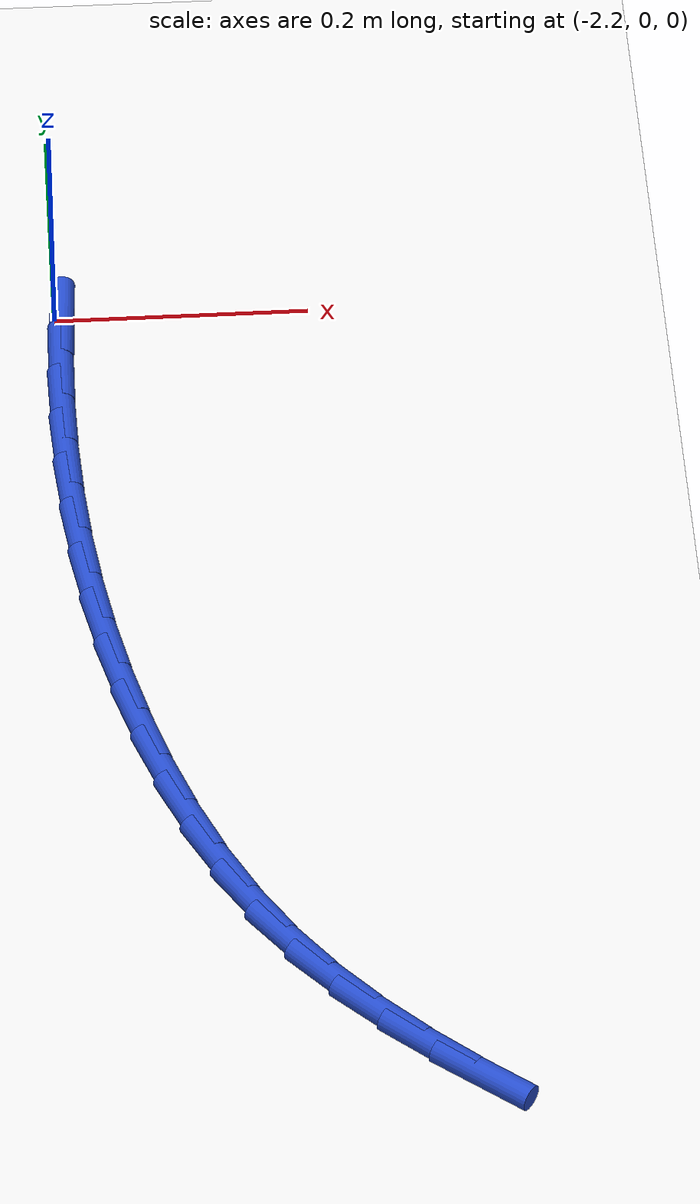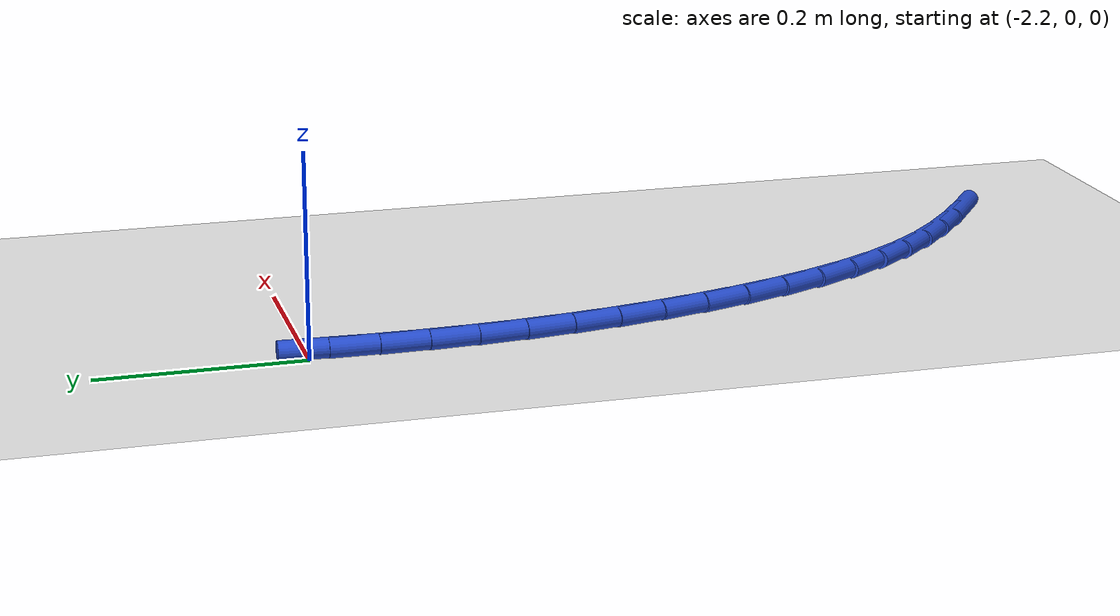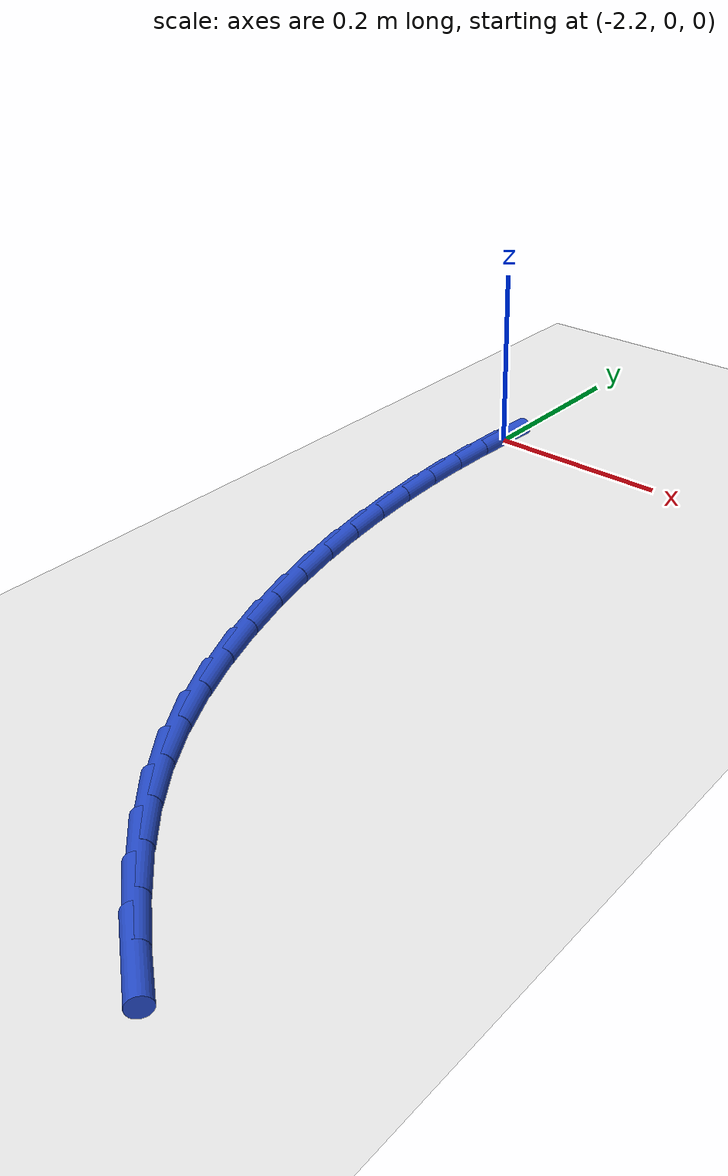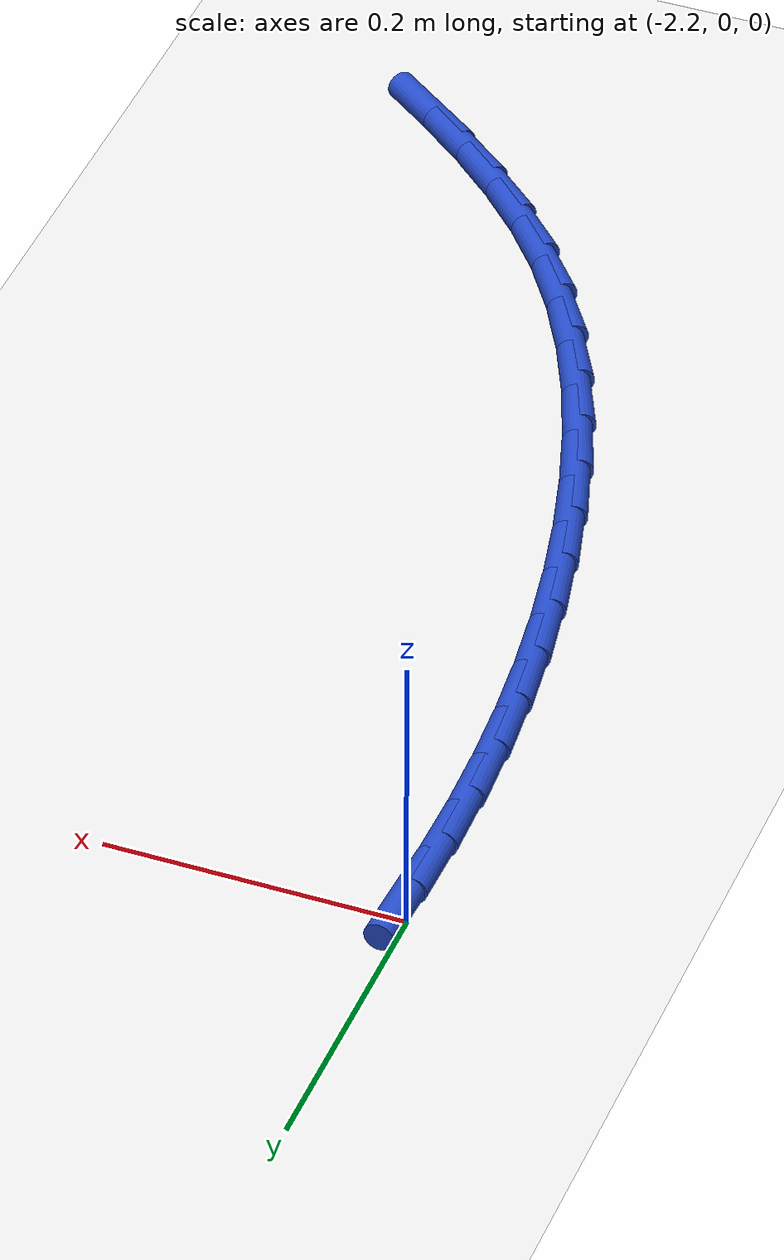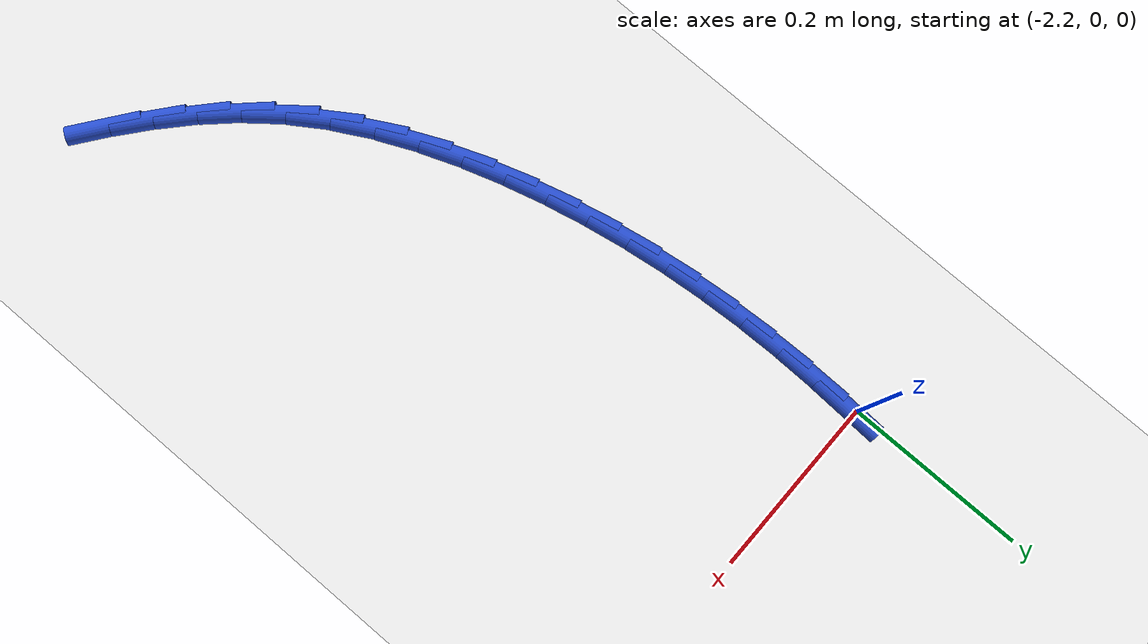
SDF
<sdf version="1.6">
 <world name="default">
  <model name="ground_plane">
   <static>1</static>
   <link name="link">
    <collision name="collision">
     <geometry><plane><normal>0 0 1</normal><size>100 100</size></plane></geometry>
     <surface><friction><ode><mu>100</mu><mu2>50</mu2></ode></friction></surface>
    </collision>
    <visual name="visual">
     <cast_shadows>0</cast_shadows>
     <geometry><plane><normal>0 0 1</normal><size>100 100</size></plane></geometry>
     <material>
      <script><uri>file://media/materials/scripts/gazebo.material</uri><name>Gazebo/WhiteGlow</name></script>
     </material>
    </visual>
   </link>
  </model>
  <model name="line">
   <link name="link_75">
    <pose>-2.1947675932614494 -0.01075471155538106 0.01 0 1.57 1.5268852778587414</pose>
    <collision name="collision">
     <geometry><cylinder><radius>0.01</radius><length>0.08</length></cylinder></geometry>
    </collision>
    <visual name="visual">
     <material>
      <script><name>Gazebo/Blue</name><uri>file://media/materials/scripts/gazebo.material</uri></script>
     </material>
     <geometry><cylinder><radius>0.01</radius><length>0.08</length></cylinder></geometry>
    </visual>
   </link>
   <link name="link_76">
    <pose>-2.1968523709959635 -0.05820148566620498 0.01 0 1.57 1.5608570523016594</pose>
    <collision name="collision">
     <geometry><cylinder><radius>0.01</radius><length>0.08</length></cylinder></geometry>
    </collision>
    <visual name="visual">
     <material>
      <script><name>Gazebo/Blue</name><uri>file://media/materials/scripts/gazebo.material</uri></script>
     </material>
     <geometry><cylinder><radius>0.01</radius><length>0.08</length></cylinder></geometry>
    </visual>
   </link>
   <link name="link_77">
    <pose>-2.197323868831489 -0.10563777585513752 0.01 0 1.57 -1.5453381966326942</pose>
    <collision name="collision">
     <geometry><cylinder><radius>0.01</radius><length>0.08</length></cylinder></geometry>
    </collision>
    <visual name="visual">
     <material>
      <script><name>Gazebo/Blue</name><uri>file://media/materials/scripts/gazebo.material</uri></script>
     </material>
     <geometry><cylinder><radius>0.01</radius><length>0.08</length></cylinder></geometry>
    </visual>
   </link>
   <link name="link_78">
    <pose>-2.196117378013722 -0.15301871663883382 0.01 0 1.57 -1.5085009158690261</pose>
    <collision name="collision">
     <geometry><cylinder><radius>0.01</radius><length>0.08</length></cylinder></geometry>
    </collision>
    <visual name="visual">
     <material>
      <script><name>Gazebo/Blue</name><uri>file://media/materials/scripts/gazebo.material</uri></script>
     </material>
     <geometry><cylinder><radius>0.01</radius><length>0.08</length></cylinder></geometry>
    </visual>
   </link>
   <link name="link_79">
    <pose>-2.1931681897883584 -0.20029944253395113 0.01 0 1.57 -1.470223901066196</pose>
    <collision name="collision">
     <geometry><cylinder><radius>0.01</radius><length>0.08</length></cylinder></geometry>
    </collision>
    <visual name="visual">
     <material>
      <script><name>Gazebo/Blue</name><uri>file://media/materials/scripts/gazebo.material</uri></script>
     </material>
     <geometry><cylinder><radius>0.01</radius><length>0.08</length></cylinder></geometry>
    </visual>
   </link>
   <link name="link_80">
    <pose>-2.1884115954010945 -0.24743508805714393 0.01 0 1.57 -1.4305241381943279</pose>
    <collision name="collision">
     <geometry><cylinder><radius>0.01</radius><length>0.08</length></cylinder></geometry>
    </collision>
    <visual name="visual">
     <material>
      <script><name>Gazebo/Blue</name><uri>file://media/materials/scripts/gazebo.material</uri></script>
     </material>
     <geometry><cylinder><radius>0.01</radius><length>0.08</length></cylinder></geometry>
    </visual>
   </link>
   <link name="link_81">
    <pose>-2.1817828860976243 -0.29438078772506937 0.01 0 1.57 -1.3894378186376584</pose>
    <collision name="collision">
     <geometry><cylinder><radius>0.01</radius><length>0.08</length></cylinder></geometry>
    </collision>
    <visual name="visual">
     <material>
      <script><name>Gazebo/Blue</name><uri>file://media/materials/scripts/gazebo.material</uri></script>
     </material>
     <geometry><cylinder><radius>0.01</radius><length>0.08</length></cylinder></geometry>
    </visual>
   </link>
   <link name="link_82">
    <pose>-2.173217353123645 -0.34109167605438284 0.01 0 1.57 -1.347022439334933</pose>
    <collision name="collision">
     <geometry><cylinder><radius>0.01</radius><length>0.08</length></cylinder></geometry>
    </collision>
    <visual name="visual">
     <material>
      <script><name>Gazebo/Blue</name><uri>file://media/materials/scripts/gazebo.material</uri></script>
     </material>
     <geometry><cylinder><radius>0.01</radius><length>0.08</length></cylinder></geometry>
    </visual>
   </link>
   <link name="link_83">
    <pose>-2.162650287724852 -0.38752288756173914 0.01 0 1.57 -1.3033477052698486</pose>
    <collision name="collision">
     <geometry><cylinder><radius>0.01</radius><length>0.08</length></cylinder></geometry>
    </collision>
    <visual name="visual">
     <material>
      <script><name>Gazebo/Blue</name><uri>file://media/materials/scripts/gazebo.material</uri></script>
     </material>
     <geometry><cylinder><radius>0.01</radius><length>0.08</length></cylinder></geometry>
    </visual>
   </link>
   <link name="link_84">
    <pose>-2.150016703402928 -0.43362862717458384 0.01 0 1.57 -1.256752112677376</pose>
    <collision name="collision">
     <geometry><cylinder><radius>0.01</radius><length>0.08</length></cylinder></geometry>
    </collision>
    <visual name="visual">
     <material>
      <script><name>Gazebo/Blue</name><uri>file://media/materials/scripts/gazebo.material</uri></script>
     </material>
     <geometry><cylinder><radius>0.01</radius><length>0.08</length></cylinder></geometry>
    </visual>
   </link>
   <link name="link_85">
    <pose>-2.1352089104097356 -0.47922017511769327 0.01 0 1.57 -1.203097127339512</pose>
    <collision name="collision">
     <geometry><cylinder><radius>0.01</radius><length>0.08</length></cylinder></geometry>
    </collision>
    <visual name="visual">
     <material>
      <script><name>Gazebo/Blue</name><uri>file://media/materials/scripts/gazebo.material</uri></script>
     </material>
     <geometry><cylinder><radius>0.01</radius><length>0.08</length></cylinder></geometry>
    </visual>
   </link>
   <link name="link_86">
    <pose>-2.1180308750054273 -0.5238131306360736 0.01 0 1.57 -1.1407785002206943</pose>
    <collision name="collision">
     <geometry><cylinder><radius>0.01</radius><length>0.08</length></cylinder></geometry>
    </collision>
    <visual name="visual">
     <material>
      <script><name>Gazebo/Blue</name><uri>file://media/materials/scripts/gazebo.material</uri></script>
     </material>
     <geometry><cylinder><radius>0.01</radius><length>0.08</length></cylinder></geometry>
    </visual>
   </link>
   <link name="link_87">
    <pose>-2.0982756154548596 -0.5668864508226861 0.01 0 1.57 -1.06848629917783</pose>
    <collision name="collision">
     <geometry><cylinder><radius>0.01</radius><length>0.08</length></cylinder></geometry>
    </collision>
    <visual name="visual">
     <material>
      <script><name>Gazebo/Blue</name><uri>file://media/materials/scripts/gazebo.material</uri></script>
     </material>
     <geometry><cylinder><radius>0.01</radius><length>0.08</length></cylinder></geometry>
    </visual>
   </link>
   <link name="link_88">
    <pose>-2.075736150022891 -0.6079190927704932 0.01 0 1.57 -0.9848974863546507</pose>
    <collision name="collision">
     <geometry><cylinder><radius>0.01</radius><length>0.08</length></cylinder></geometry>
    </collision>
    <visual name="visual">
     <material>
      <script><name>Gazebo/Blue</name><uri>file://media/materials/scripts/gazebo.material</uri></script>
     </material>
     <geometry><cylinder><radius>0.01</radius><length>0.08</length></cylinder></geometry>
    </visual>
   </link>
   <link name="link_89">
    <pose>-2.0502055509377843 -0.6463901028264392 0.01 0 1.57 -0.8938275376518076</pose>
    <collision name="collision">
     <geometry><cylinder><radius>0.01</radius><length>0.08</length></cylinder></geometry>
    </collision>
    <visual name="visual">
     <material>
      <script><name>Gazebo/Blue</name><uri>file://media/materials/scripts/gazebo.material</uri></script>
     </material>
     <geometry><cylinder><radius>0.01</radius><length>0.08</length></cylinder></geometry>
    </visual>
   </link>
   <link name="link_90">
    <pose>-2.0216007047509774 -0.68198331279309 0.01 0 1.57 -0.8112631321535059</pose>
    <collision name="collision">
     <geometry><cylinder><radius>0.01</radius><length>0.08</length></cylinder></geometry>
    </collision>
    <visual name="visual">
     <material>
      <script><name>Gazebo/Blue</name><uri>file://media/materials/scripts/gazebo.material</uri></script>
     </material>
     <geometry><cylinder><radius>0.01</radius><length>0.08</length></cylinder></geometry>
    </visual>
   </link>
   <link name="link_91">
    <pose>-1.9902263813405607 -0.7150241027344973 0.01 0 1.57 -0.7417762449214862</pose>
    <collision name="collision">
     <geometry><cylinder><radius>0.01</radius><length>0.08</length></cylinder></geometry>
    </collision>
    <visual name="visual">
     <material>
      <script><name>Gazebo/Blue</name><uri>file://media/materials/scripts/gazebo.material</uri></script>
     </material>
     <geometry><cylinder><radius>0.01</radius><length>0.08</length></cylinder></geometry>
    </visual>
   </link>
   <link name="link_92">
    <pose>-1.9564631048628165 -0.7459631481892411 0.01 0 1.57 -0.6860679672285739</pose>
    <collision name="collision">
     <geometry><cylinder><radius>0.01</radius><length>0.08</length></cylinder></geometry>
    </collision>
    <visual name="visual">
     <material>
      <script><name>Gazebo/Blue</name><uri>file://media/materials/scripts/gazebo.material</uri></script>
     </material>
     <geometry><cylinder><radius>0.01</radius><length>0.08</length></cylinder></geometry>
    </visual>
   </link>
   <link name="link_93">
    <pose>-1.9206913994740291 -0.7752511246958999 0.01 0 1.57 -0.644148937263058</pose>
    <collision name="collision">
     <geometry><cylinder><radius>0.01</radius><length>0.08</length></cylinder></geometry>
    </collision>
    <visual name="visual">
     <material>
      <script><name>Gazebo/Blue</name><uri>file://media/materials/scripts/gazebo.material</uri></script>
     </material>
     <geometry><cylinder><radius>0.01</radius><length>0.08</length></cylinder></geometry>
    </visual>
   </link>
  </model>
 </world>
</sdf>
